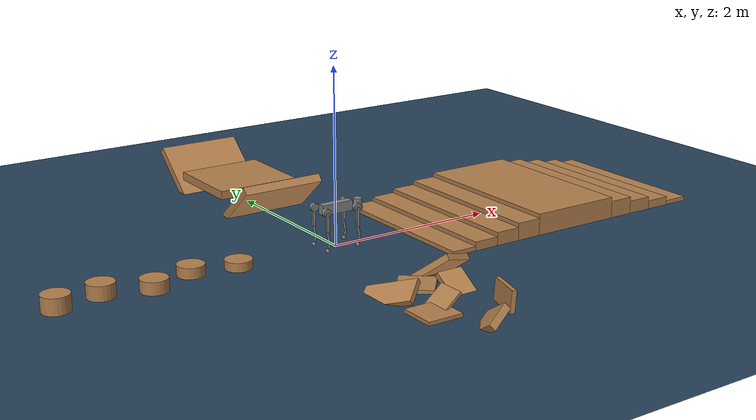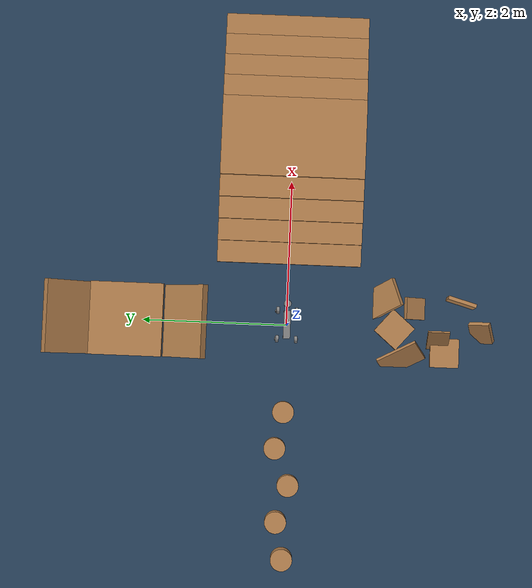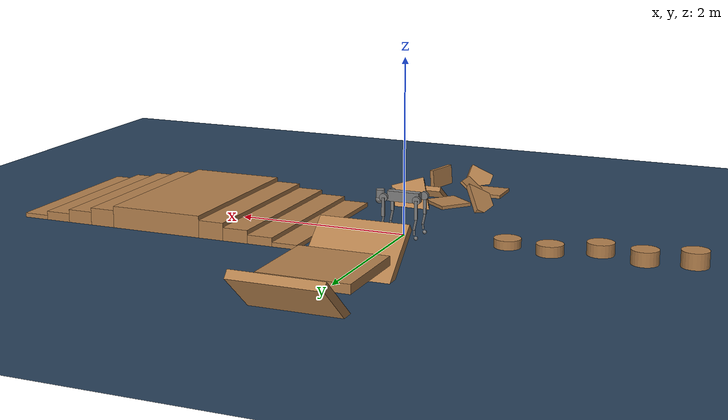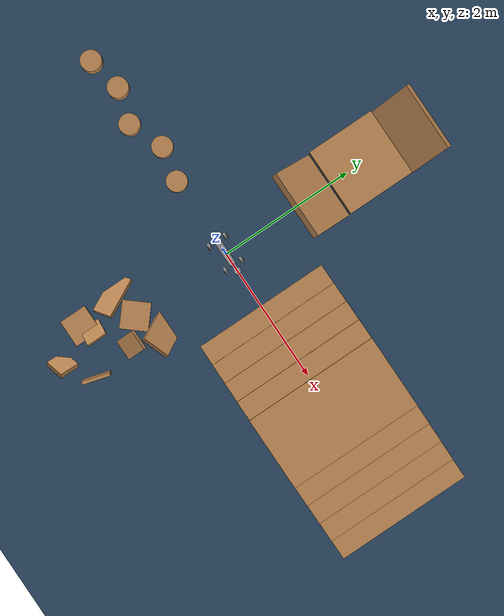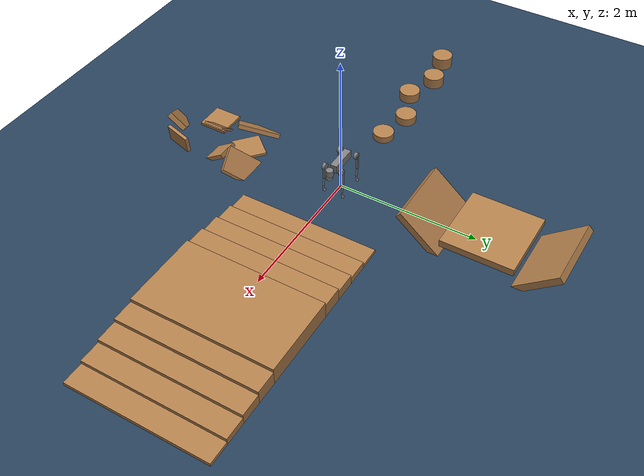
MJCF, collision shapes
<mujoco model="go2 obstacle course">
  <include file="go2.xml"/>

  <statistic center="0 0 0.1" extent="0.8"/>

  <visual>
    <headlight diffuse="0.6 0.6 0.6" ambient="0.3 0.3 0.3" specular="0 0 0"/>
    <rgba haze="0.15 0.25 0.35 1"/>
    <global azimuth="-130" elevation="-20"/>
  </visual>

  <asset>
    <texture type="skybox" builtin="gradient" rgb1="0.3 0.5 0.7" rgb2="0 0 0" width="512" height="3072"/>
    <texture type="2d" name="groundplane" builtin="checker" mark="edge" rgb1="0.2 0.3 0.4" rgb2="0.1 0.2 0.3" markrgb="0.8 0.8 0.8" width="300" height="300"/>
    <material name="groundplane" texture="groundplane" texuniform="true" texrepeat="5 5" reflectance="0.2"/>

    <!-- 障碍物专用木材质 -->
    <texture type="cube" name="obstacle_tex" builtin="flat" rgb1="0.7 0.5 0.3" rgb2="0.7 0.5 0.3" width="127" height="127"/>
    <material name="obstacle_mat" texture="obstacle_tex"/>
  </asset>

  <worldbody>
    <light pos="0 0 1.5" dir="0 0 -1" directional="true"/>
    <!-- 扩大地面的大小 -->
    <geom name="floor" size="10 10 0.05" type="plane" material="groundplane"/>

    <!-- ==================== 前方 (+X向): 楼梯测试测试区 ==================== -->
    <!-- 上楼梯 -->
    <geom pos="1.0 0 0.025" type="box" size="0.15 1.0 0.025" material="obstacle_mat"/>
    <geom pos="1.3 0 0.05"  type="box" size="0.15 1.0 0.05" material="obstacle_mat"/>
    <geom pos="1.6 0 0.075" type="box" size="0.15 1.0 0.075" material="obstacle_mat"/>
    <geom pos="1.9 0 0.1"   type="box" size="0.15 1.0 0.1" material="obstacle_mat"/>
    <!-- 平台 -->
    <geom pos="2.6 0 0.125" type="box" size="0.55 1.0 0.125" material="obstacle_mat"/>
    <!-- 下楼梯 -->
    <geom pos="3.3 0 0.1"   type="box" size="0.15 1.0 0.1" material="obstacle_mat"/>
    <geom pos="3.6 0 0.075" type="box" size="0.15 1.0 0.075" material="obstacle_mat"/>
    <geom pos="3.9 0 0.05"  type="box" size="0.15 1.0 0.05" material="obstacle_mat"/>
    <geom pos="4.2 0 0.025" type="box" size="0.15 1.0 0.025" material="obstacle_mat"/>

    <!-- ==================== 左方 (+Y向): 斜坡 (Ramps) 测试区 ==================== -->
    <!-- euler 旋转让方块倾斜成为斜坡 -->
    <geom pos="0 1.5 0.1" type="box" size="0.5 0.5 0.05" material="obstacle_mat" euler="15 0 0"/>
    <geom pos="0 2.2 0.23" type="box" size="0.5 0.5 0.05" material="obstacle_mat"/>
    <geom pos="0 2.9 0.1" type="box" size="0.5 0.5 0.05" material="obstacle_mat" euler="-15 0 0"/>

    <!-- ==================== 右方 (-Y向): 乱石阵 (Rough Terrain) ==================== -->
    <!-- 使用一堆随机摆放的小障碍物模拟不平整的非结构化地形 -->
    <geom pos="0 -1.5 0.02" type="box" size="0.2 0.2 0.02" material="obstacle_mat" euler="0 0 15"/>
    <geom pos="0.3 -1.8 0.03" type="box" size="0.15 0.2 0.03" material="obstacle_mat" euler="10 0 0"/>
    <geom pos="-0.2 -2.1 0.015" type="box" size="0.25 0.15 0.015" material="obstacle_mat" euler="0 15 0"/>
    <geom pos="0.4 -2.4 0.025" type="box" size="0.2 0.2 0.025" material="obstacle_mat" euler="5 5 5"/>
    <geom pos="0 -2.7 0.04" type="box" size="0.15 0.15 0.04" material="obstacle_mat" euler="-10 10 0"/>
    <geom pos="-0.3 -2.2 0.02" type="box" size="0.2 0.2 0.02" material="obstacle_mat"/>
    <geom pos="-0.4 -1.6 0.03" type="box" size="0.15 0.3 0.03" material="obstacle_mat" euler="0 -10 -10"/>
    <geom pos="0.4 -1.3 0.035" type="box" size="0.3 0.2 0.035" material="obstacle_mat" euler="15 0 20"/>

    <!-- ==================== 后方 (-X向): 梅花桩 (Stepping Stones) ==================== -->
    <!-- 地面悬空的圆柱体，考验落脚点精度 -->
    <geom pos="-1.2 0 0.05" type="cylinder" size="0.15 0.05" material="obstacle_mat"/>
    <geom pos="-1.7 0.1 0.06" type="cylinder" size="0.15 0.06" material="obstacle_mat"/>
    <geom pos="-2.2 -0.1 0.07" type="cylinder" size="0.15 0.07" material="obstacle_mat"/>
    <geom pos="-2.7 0.05 0.08" type="cylinder" size="0.15 0.08" material="obstacle_mat"/>
    <geom pos="-3.2 -0.05 0.09" type="cylinder" size="0.15 0.09" material="obstacle_mat"/>

  </worldbody>
</mujoco>

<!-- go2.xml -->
<mujoco model="go2">
  <compiler angle="radian" meshdir="assets/go2/assets" autolimits="true" />

  <option cone="elliptic" impratio="100" />

  <default>
    <default class="go2">
      <geom friction="0.4" margin="0.001" condim="1"/>
      <joint axis="0 1 0" damping="0.1" armature="0.01" frictionloss="0.2"/>
      <motor ctrlrange="-23.7 23.7"/>
      <default class="abduction">
        <joint axis="1 0 0" range="-1.0472 1.0472"/>
      </default>
      <default class="hip">
        <default class="front_hip">
          <joint range="-1.5708 3.4907"/>
        </default>
        <default class="back_hip">
          <joint range="-0.5236 4.5379"/>
        </default>
      </default>
      <default class="knee">
        <joint range="-2.7227 -0.83776"/>
        <motor ctrlrange="-45.43 45.43"/>
      </default>
      <default class="visual">
        <geom type="mesh" contype="0" conaffinity="0" group="2"/>
      </default>
      <default class="collision">
        <geom group="3"/>
        <default class="foot">
          <geom size="0.022" pos="-0.002 0 -0.213" priority="1" condim="6"
            friction="0.4 0.02 0.01"/>
        </default>
      </default>
    </default>
  </default>

  <asset>
    <material name="metal" rgba=".9 .95 .95 1" />
    <material name="black" rgba="0 0 0 1" />
    <material name="white" rgba="1 1 1 1" />
    <material name="gray" rgba="0.671705 0.692426 0.774270 1" />

    <mesh file="base_0.obj" />
    <mesh file="base_1.obj" />
    <mesh file="base_2.obj" />
    <mesh file="base_3.obj" />
    <mesh file="base_4.obj" />
    <mesh file="hip_0.obj" />
    <mesh file="hip_1.obj" />
    <mesh file="thigh_0.obj" />
    <mesh file="thigh_1.obj" />
    <mesh file="thigh_mirror_0.obj" />
    <mesh file="thigh_mirror_1.obj" />
    <mesh file="calf_0.obj" />
    <mesh file="calf_1.obj" />
    <mesh file="calf_mirror_0.obj" />
    <mesh file="calf_mirror_1.obj" />
    <mesh file="foot.obj" />
  </asset>

  <worldbody>
    <body name="base_link" pos="0 0 0.445" childclass="go2">
      <inertial pos="0.021112 0 -0.005366" quat="-0.000543471 0.713435 -0.00173769 0.700719"
        mass="6.921"
        diaginertia="0.107027 0.0980771 0.0244531" />
      <freejoint />
      <geom mesh="base_0" material="black" class="visual" />
      <geom mesh="base_1" material="black" class="visual" />
      <geom mesh="base_2" material="black" class="visual" />
      <geom mesh="base_3" material="white" class="visual" />
      <geom mesh="base_4" material="gray" class="visual" />
      <geom size="0.1881 0.04675 0.057" type="box" class="collision" />
      <geom size="0.05 0.045" pos="0.285 0 0.01" type="cylinder" class="collision" />
      <geom size="0.047" pos="0.293 0 -0.06" class="collision" />
      <site name="imu" pos="-0.02557 0 0.04232" />
      <body name="FL_hip" pos="0.1934 0.0465 0">
        <inertial pos="-0.0054 0.00194 -0.000105" quat="0.497014 0.499245 0.505462 0.498237"
          mass="0.678"
          diaginertia="0.00088403 0.000596003 0.000479967" />
        <joint name="FL_hip_joint" class="abduction" />
        <geom mesh="hip_0" material="metal" class="visual" />
        <geom mesh="hip_1" material="gray" class="visual" />
        <geom size="0.046 0.02" pos="0 0.08 0" quat="1 1 0 0" type="cylinder" class="collision" />
        <body name="FL_thigh" pos="0 0.0955 0">
          <inertial pos="-0.00374 -0.0223 -0.0327" quat="0.829533 0.0847635 -0.0200632 0.551623"
            mass="1.152"
            diaginertia="0.00594973 0.00584149 0.000878787" />
          <joint name="FL_thigh_joint" class="front_hip" />
          <geom mesh="thigh_0" material="metal" class="visual" />
          <geom mesh="thigh_1" material="gray" class="visual" />
          <geom size="0.1065 0.01225 0.017" pos="0 0 -0.1065" quat="0.707107 0 0.707107 0"
            type="box" class="collision" />
          <body name="FL_calf" pos="0 0 -0.213">
            <inertial pos="0.00629595 -0.000622121 -0.141417"
              quat="0.710672 0.00154099 -0.00450087 0.703508"
              mass="0.241352" diaginertia="0.0014901 0.00146356 5.31397e-05" />
            <joint name="FL_calf_joint" class="knee" />
            <geom mesh="calf_0" material="gray" class="visual" />
            <geom mesh="calf_1" material="black" class="visual" />
            <geom size="0.012 0.06" pos="0.008 0 -0.06" quat="0.994493 0 -0.104807 0"
              type="cylinder" class="collision" />
            <geom size="0.011 0.0325" pos="0.02 0 -0.148" quat="0.999688 0 0.0249974 0"
              type="cylinder" class="collision" />
            <geom pos="0 0 -0.213" mesh="foot" class="visual" material="black" />
            <geom name="FL" class="foot" />
            <body name="FL_foot" pos="0 0 -0.213" />
          </body>
        </body>
      </body>
      <body name="FR_hip" pos="0.1934 -0.0465 0">
        <inertial pos="-0.0054 -0.00194 -0.000105" quat="0.498237 0.505462 0.499245 0.497014"
          mass="0.678"
          diaginertia="0.00088403 0.000596003 0.000479967" />
        <joint name="FR_hip_joint" class="abduction" />
        <geom mesh="hip_0" material="metal" class="visual" quat="4.63268e-05 1 0 0" />
        <geom mesh="hip_1" material="gray" class="visual" quat="4.63268e-05 1 0 0" />
        <geom size="0.046 0.02" pos="0 -0.08 0" quat="0.707107 0.707107 0 0" type="cylinder"
          class="collision" />
        <body name="FR_thigh" pos="0 -0.0955 0">
          <inertial pos="-0.00374 0.0223 -0.0327" quat="0.551623 -0.0200632 0.0847635 0.829533"
            mass="1.152"
            diaginertia="0.00594973 0.00584149 0.000878787" />
          <joint name="FR_thigh_joint" class="front_hip" />
          <geom mesh="thigh_mirror_0" material="metal" class="visual" />
          <geom mesh="thigh_mirror_1" material="gray" class="visual" />
          <geom size="0.1065 0.01225 0.017" pos="0 0 -0.1065" quat="0.707107 0 0.707107 0"
            type="box" class="collision" />
          <body name="FR_calf" pos="0 0 -0.213">
            <inertial pos="0.00629595 0.000622121 -0.141417"
              quat="0.703508 -0.00450087 0.00154099 0.710672"
              mass="0.241352" diaginertia="0.0014901 0.00146356 5.31397e-05" />
            <joint name="FR_calf_joint" class="knee" />
            <geom mesh="calf_mirror_0" material="gray" class="visual" />
            <geom mesh="calf_mirror_1" material="black" class="visual" />
            <geom size="0.013 0.06" pos="0.01 0 -0.06" quat="0.995004 0 -0.0998334 0"
              type="cylinder" class="collision" />
            <geom size="0.011 0.0325" pos="0.02 0 -0.148" quat="0.999688 0 0.0249974 0"
              type="cylinder" class="collision" />
            <geom pos="0 0 -0.213" mesh="foot" class="visual" material="black" />
            <geom name="FR" class="foot" />
            <body name="FR_foot" pos="0 0 -0.213" />
          </body>
        </body>
      </body>
      <body name="RL_hip" pos="-0.1934 0.0465 0">
        <inertial pos="0.0054 0.00194 -0.000105" quat="0.505462 0.498237 0.497014 0.499245"
          mass="0.678"
          diaginertia="0.00088403 0.000596003 0.000479967" />
        <joint name="RL_hip_joint" class="abduction" />
        <geom mesh="hip_0" material="metal" class="visual" quat="4.63268e-05 0 1 0" />
        <geom mesh="hip_1" material="gray" class="visual" quat="4.63268e-05 0 1 0" />
        <geom size="0.046 0.02" pos="0 0.08 0" quat="0.707107 0.707107 0 0" type="cylinder"
          class="collision" />
        <body name="RL_thigh" pos="0 0.0955 0">
          <inertial pos="-0.00374 -0.0223 -0.0327" quat="0.829533 0.0847635 -0.0200632 0.551623"
            mass="1.152"
            diaginertia="0.00594973 0.00584149 0.000878787" />
          <joint name="RL_thigh_joint" class="back_hip" />
          <geom mesh="thigh_0" material="metal" class="visual" />
          <geom mesh="thigh_1" material="gray" class="visual" />
          <geom size="0.1065 0.01225 0.017" pos="0 0 -0.1065" quat="0.707107 0 0.707107 0"
            type="box" class="collision" />
          <body name="RL_calf" pos="0 0 -0.213">
            <inertial pos="0.00629595 -0.000622121 -0.141417"
              quat="0.710672 0.00154099 -0.00450087 0.703508"
              mass="0.241352" diaginertia="0.0014901 0.00146356 5.31397e-05" />
            <joint name="RL_calf_joint" class="knee" />
            <geom mesh="calf_0" material="gray" class="visual" />
            <geom mesh="calf_1" material="black" class="visual" />
            <geom size="0.013 0.06" pos="0.01 0 -0.06" quat="0.995004 0 -0.0998334 0"
              type="cylinder" class="collision" />
            <geom size="0.011 0.0325" pos="0.02 0 -0.148" quat="0.999688 0 0.0249974 0"
              type="cylinder" class="collision" />
            <geom pos="0 0 -0.213" mesh="foot" class="visual" material="black" />
            <geom name="RL" class="foot" />
            <body name="RL_foot" pos="0 0 -0.213" />
          </body>
        </body>
      </body>
      <body name="RR_hip" pos="-0.1934 -0.0465 0">
        <inertial pos="0.0054 -0.00194 -0.000105" quat="0.499245 0.497014 0.498237 0.505462"
          mass="0.678"
          diaginertia="0.00088403 0.000596003 0.000479967" />
        <joint name="RR_hip_joint" class="abduction" />
        <geom mesh="hip_0" material="metal" class="visual"
          quat="2.14617e-09 4.63268e-05 4.63268e-05 -1" />
        <geom mesh="hip_1" material="gray" class="visual"
          quat="2.14617e-09 4.63268e-05 4.63268e-05 -1" />
        <geom size="0.046 0.02" pos="0 -0.08 0" quat="0.707107 0.707107 0 0" type="cylinder"
          class="collision" />
        <body name="RR_thigh" pos="0 -0.0955 0">
          <inertial pos="-0.00374 0.0223 -0.0327" quat="0.551623 -0.0200632 0.0847635 0.829533"
            mass="1.152"
            diaginertia="0.00594973 0.00584149 0.000878787" />
          <joint name="RR_thigh_joint" class="back_hip" />
          <geom mesh="thigh_mirror_0" material="metal" class="visual" />
          <geom mesh="thigh_mirror_1" material="gray" class="visual" />
          <geom size="0.1065 0.01225 0.017" pos="0 0 -0.1065" quat="0.707107 0 0.707107 0"
            type="box" class="collision" />
          <body name="RR_calf" pos="0 0 -0.213">
            <inertial pos="0.00629595 0.000622121 -0.141417"
              quat="0.703508 -0.00450087 0.00154099 0.710672"
              mass="0.241352" diaginertia="0.0014901 0.00146356 5.31397e-05" />
            <joint name="RR_calf_joint" class="knee" />
            <geom mesh="calf_mirror_0" material="gray" class="visual" />
            <geom mesh="calf_mirror_1" material="black" class="visual" />
            <geom size="0.013 0.06" pos="0.01 0 -0.06" quat="0.995004 0 -0.0998334 0"
              type="cylinder" class="collision" />
            <geom size="0.011 0.0325" pos="0.02 0 -0.148" quat="0.999688 0 0.0249974 0"
              type="cylinder" class="collision" />
            <geom pos="0 0 -0.213" mesh="foot" class="visual" material="black" />
            <geom name="RR" class="foot" />
            <body name="RR_foot" pos="0 0 -0.213" />
          </body>
        </body>
      </body>
    </body>
  </worldbody>

  <actuator>
    <motor class="abduction" name="FR_hip" joint="FR_hip_joint" />
    <motor class="hip" name="FR_thigh" joint="FR_thigh_joint" />
    <motor class="knee" name="FR_calf" joint="FR_calf_joint" />
    <motor class="abduction" name="FL_hip" joint="FL_hip_joint" />
    <motor class="hip" name="FL_thigh" joint="FL_thigh_joint" />
    <motor class="knee" name="FL_calf" joint="FL_calf_joint" />
    <motor class="abduction" name="RR_hip" joint="RR_hip_joint" />
    <motor class="hip" name="RR_thigh" joint="RR_thigh_joint" />
    <motor class="knee" name="RR_calf" joint="RR_calf_joint" />
    <motor class="abduction" name="RL_hip" joint="RL_hip_joint" />
    <motor class="hip" name="RL_thigh" joint="RL_thigh_joint" />
    <motor class="knee" name="RL_calf" joint="RL_calf_joint" />
  </actuator>

  <sensor>
    <jointpos name="FR_hip_pos" joint="FR_hip_joint" />
    <jointpos name="FR_thigh_pos" joint="FR_thigh_joint" />
    <jointpos name="FR_calf_pos" joint="FR_calf_joint" />
    <jointpos name="FL_hip_pos" joint="FL_hip_joint" />
    <jointpos name="FL_thigh_pos" joint="FL_thigh_joint" />
    <jointpos name="FL_calf_pos" joint="FL_calf_joint" />
    <jointpos name="RR_hip_pos" joint="RR_hip_joint" />
    <jointpos name="RR_thigh_pos" joint="RR_thigh_joint" />
    <jointpos name="RR_calf_pos" joint="RR_calf_joint" />
    <jointpos name="RL_hip_pos" joint="RL_hip_joint" />
    <jointpos name="RL_thigh_pos" joint="RL_thigh_joint" />
    <jointpos name="RL_calf_pos" joint="RL_calf_joint" />

    <jointvel name="FR_hip_vel" joint="FR_hip_joint" />
    <jointvel name="FR_thigh_vel" joint="FR_thigh_joint" />
    <jointvel name="FR_calf_vel" joint="FR_calf_joint" />
    <jointvel name="FL_hip_vel" joint="FL_hip_joint" />
    <jointvel name="FL_thigh_vel" joint="FL_thigh_joint" />
    <jointvel name="FL_calf_vel" joint="FL_calf_joint" />
    <jointvel name="RR_hip_vel" joint="RR_hip_joint" />
    <jointvel name="RR_thigh_vel" joint="RR_thigh_joint" />
    <jointvel name="RR_calf_vel" joint="RR_calf_joint" />
    <jointvel name="RL_hip_vel" joint="RL_hip_joint" />
    <jointvel name="RL_thigh_vel" joint="RL_thigh_joint" />
    <jointvel name="RL_calf_vel" joint="RL_calf_joint" />

    <jointactuatorfrc name="FR_hip_torque" joint="FR_hip_joint" noise="0.01" />
    <jointactuatorfrc name="FR_thigh_torque" joint="FR_thigh_joint" noise="0.01" />
    <jointactuatorfrc name="FR_calf_torque" joint="FR_calf_joint" noise="0.01" />
    <jointactuatorfrc name="FL_hip_torque" joint="FL_hip_joint" noise="0.01" />
    <jointactuatorfrc name="FL_thigh_torque" joint="FL_thigh_joint" noise="0.01" />
    <jointactuatorfrc name="FL_calf_torque" joint="FL_calf_joint" noise="0.01" />
    <jointactuatorfrc name="RR_hip_torque" joint="RR_hip_joint" noise="0.01" />
    <jointactuatorfrc name="RR_thigh_torque" joint="RR_thigh_joint" noise="0.01" />
    <jointactuatorfrc name="RR_calf_torque" joint="RR_calf_joint" noise="0.01" />
    <jointactuatorfrc name="RL_hip_torque" joint="RL_hip_joint" noise="0.01" />
    <jointactuatorfrc name="RL_thigh_torque" joint="RL_thigh_joint" noise="0.01" />
    <jointactuatorfrc name="RL_calf_torque" joint="RL_calf_joint" noise="0.01" />

    <framequat name="imu_quat" objtype="site" objname="imu" />
    <gyro name="imu_gyro" site="imu" />
    <accelerometer name="imu_acc" site="imu" />

    <framepos name="frame_pos" objtype="site" objname="imu" />
    <framelinvel name="frame_vel" objtype="site" objname="imu" />
  </sensor>

  <keyframe>
    <key name="home" qpos="0 0 0.27 1 0 0 0 0 0.9 -1.8 0 0.9 -1.8 0 0.9 -1.8 0 0.9 -1.8"
      ctrl="0 0.9 -1.8 0 0.9 -1.8 0 0.9 -1.8 0 0.9 -1.8" />
  </keyframe>
</mujoco>
